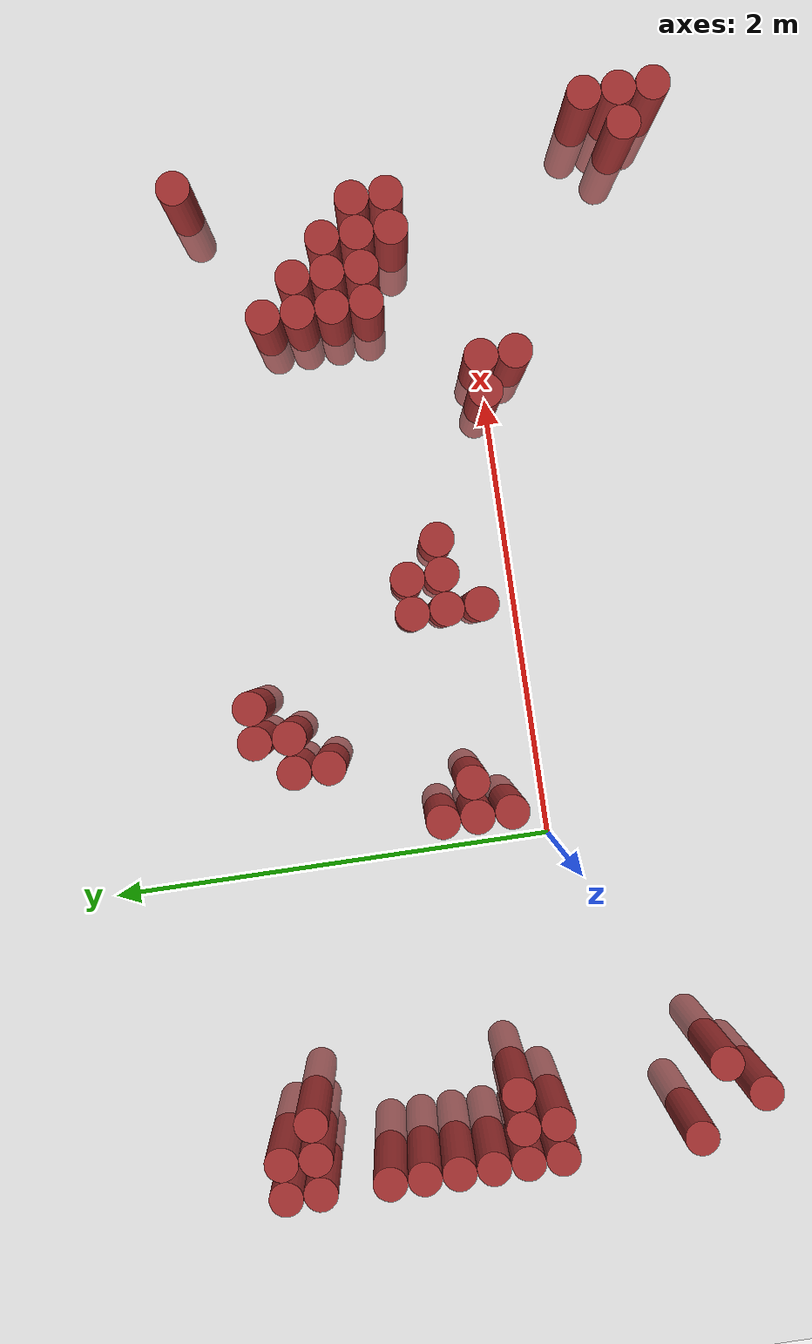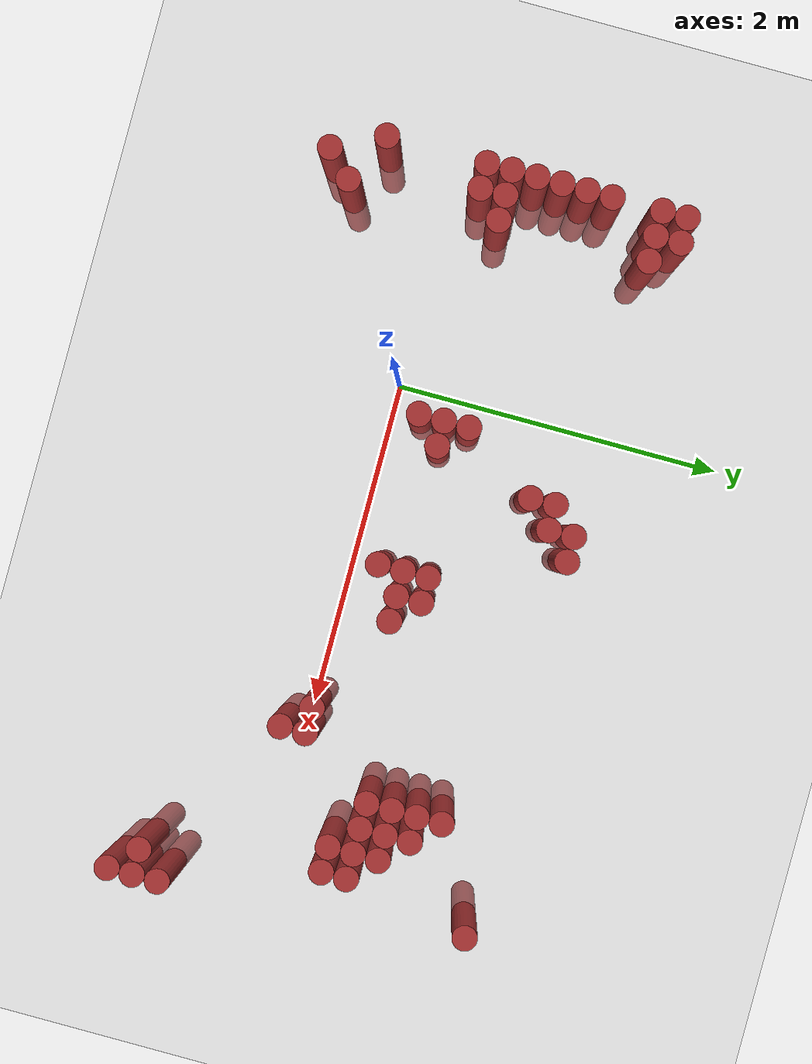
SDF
<sdf version="1.6">
 <world name="default">
  <model name="ground_plane">
   <static>1</static>
   <link name="link">
    <collision name="collision">
     <geometry><plane><normal>0 0 1</normal><size>100 100</size></plane></geometry>
     <surface><friction><ode><mu>100</mu><mu2>50</mu2></ode></friction></surface>
    </collision>
    <visual name="visual">
     <cast_shadows>0</cast_shadows>
     <geometry><plane><normal>0 0 1</normal><size>100 100</size></plane></geometry>
     <material>
      <script><uri>file://media/materials/scripts/gazebo.material</uri><name>Gazebo/Grey</name></script>
     </material>
    </visual>
   </link>
  </model>
  <model name="unit_cylinder_414">
   <static>1</static>
   <pose>-1.325000 -0.425000 0.000000 0.000000 0.000000 0.000000</pose>
   <link name="link">
    <inertial>
     <mass>1</mass>
     <inertia><ixx>0.145833</ixx><ixy>0</ixy><ixz>0</ixz><iyy>0.145833</iyy><iyz>0</iyz><izz>0.125</izz></inertia>
    </inertial>
    <collision name="collision">
     <geometry><cylinder><radius>0.075000</radius><length>1.5</length></cylinder></geometry>
    </collision>
    <visual name="visual">
     <geometry><cylinder><radius>0.075000</radius><length>1.5</length></cylinder></geometry>
     <material>
      <ambient>0.648000 0.192000 0.192000 1</ambient>
      <diffuse>0.648000 0.192000 0.192000 1</diffuse>
     </material>
     <material>
      <script><name>Gazebo/Grey</name><uri>file://media/materials/scripts/gazebo.material</uri></script>
     </material>
    </visual>
   </link>
  </model>
  <model name="unit_cylinder_415">
   <static>1</static>
   <pose>-1.325000 0.175000 0.000000 0.000000 0.000000 0.000000</pose>
   <link name="link">
    <inertial>
     <mass>1</mass>
     <inertia><ixx>0.145833</ixx><ixy>0</ixy><ixz>0</ixz><iyy>0.145833</iyy><iyz>0</iyz><izz>0.125</izz></inertia>
    </inertial>
    <collision name="collision">
     <geometry><cylinder><radius>0.075000</radius><length>1.5</length></cylinder></geometry>
    </collision>
    <visual name="visual">
     <geometry><cylinder><radius>0.075000</radius><length>1.5</length></cylinder></geometry>
     <material>
      <ambient>0.648000 0.192000 0.192000 1</ambient>
      <diffuse>0.648000 0.192000 0.192000 1</diffuse>
     </material>
     <material>
      <script><name>Gazebo/Grey</name><uri>file://media/materials/scripts/gazebo.material</uri></script>
     </material>
    </visual>
   </link>
  </model>
  <model name="unit_cylinder_416">
   <static>1</static>
   <pose>-1.325000 0.325000 0.000000 0.000000 0.000000 0.000000</pose>
   <link name="link">
    <inertial>
     <mass>1</mass>
     <inertia><ixx>0.145833</ixx><ixy>0</ixy><ixz>0</ixz><iyy>0.145833</iyy><iyz>0</iyz><izz>0.125</izz></inertia>
    </inertial>
    <collision name="collision">
     <geometry><cylinder><radius>0.075000</radius><length>1.5</length></cylinder></geometry>
    </collision>
    <visual name="visual">
     <geometry><cylinder><radius>0.075000</radius><length>1.5</length></cylinder></geometry>
     <material>
      <ambient>0.648000 0.192000 0.192000 1</ambient>
      <diffuse>0.648000 0.192000 0.192000 1</diffuse>
     </material>
     <material>
      <script><name>Gazebo/Grey</name><uri>file://media/materials/scripts/gazebo.material</uri></script>
     </material>
    </visual>
   </link>
  </model>
  <model name="unit_cylinder_417">
   <static>1</static>
   <pose>-1.325000 0.475000 0.000000 0.000000 0.000000 0.000000</pose>
   <link name="link">
    <inertial>
     <mass>1</mass>
     <inertia><ixx>0.145833</ixx><ixy>0</ixy><ixz>0</ixz><iyy>0.145833</iyy><iyz>0</iyz><izz>0.125</izz></inertia>
    </inertial>
    <collision name="collision">
     <geometry><cylinder><radius>0.075000</radius><length>1.5</length></cylinder></geometry>
    </collision>
    <visual name="visual">
     <geometry><cylinder><radius>0.075000</radius><length>1.5</length></cylinder></geometry>
     <material>
      <ambient>0.648000 0.192000 0.192000 1</ambient>
      <diffuse>0.648000 0.192000 0.192000 1</diffuse>
     </material>
     <material>
      <script><name>Gazebo/Grey</name><uri>file://media/materials/scripts/gazebo.material</uri></script>
     </material>
    </visual>
   </link>
  </model>
  <model name="unit_cylinder_418">
   <static>1</static>
   <pose>-1.325000 0.625000 0.000000 0.000000 0.000000 0.000000</pose>
   <link name="link">
    <inertial>
     <mass>1</mass>
     <inertia><ixx>0.145833</ixx><ixy>0</ixy><ixz>0</ixz><iyy>0.145833</iyy><iyz>0</iyz><izz>0.125</izz></inertia>
    </inertial>
    <collision name="collision">
     <geometry><cylinder><radius>0.075000</radius><length>1.5</length></cylinder></geometry>
    </collision>
    <visual name="visual">
     <geometry><cylinder><radius>0.075000</radius><length>1.5</length></cylinder></geometry>
     <material>
      <ambient>0.648000 0.192000 0.192000 1</ambient>
      <diffuse>0.648000 0.192000 0.192000 1</diffuse>
     </material>
     <material>
      <script><name>Gazebo/Grey</name><uri>file://media/materials/scripts/gazebo.material</uri></script>
     </material>
    </visual>
   </link>
  </model>
  <model name="unit_cylinder_419">
   <static>1</static>
   <pose>-1.325000 0.775000 0.000000 0.000000 0.000000 0.000000</pose>
   <link name="link">
    <inertial>
     <mass>1</mass>
     <inertia><ixx>0.145833</ixx><ixy>0</ixy><ixz>0</ixz><iyy>0.145833</iyy><iyz>0</iyz><izz>0.125</izz></inertia>
    </inertial>
    <collision name="collision">
     <geometry><cylinder><radius>0.075000</radius><length>1.5</length></cylinder></geometry>
    </collision>
    <visual name="visual">
     <geometry><cylinder><radius>0.075000</radius><length>1.5</length></cylinder></geometry>
     <material>
      <ambient>0.648000 0.192000 0.192000 1</ambient>
      <diffuse>0.648000 0.192000 0.192000 1</diffuse>
     </material>
     <material>
      <script><name>Gazebo/Grey</name><uri>file://media/materials/scripts/gazebo.material</uri></script>
     </material>
    </visual>
   </link>
  </model>
  <model name="unit_cylinder_420">
   <static>1</static>
   <pose>-1.325000 0.925000 0.000000 0.000000 0.000000 0.000000</pose>
   <link name="link">
    <inertial>
     <mass>1</mass>
     <inertia><ixx>0.145833</ixx><ixy>0</ixy><ixz>0</ixz><iyy>0.145833</iyy><iyz>0</iyz><izz>0.125</izz></inertia>
    </inertial>
    <collision name="collision">
     <geometry><cylinder><radius>0.075000</radius><length>1.5</length></cylinder></geometry>
    </collision>
    <visual name="visual">
     <geometry><cylinder><radius>0.075000</radius><length>1.5</length></cylinder></geometry>
     <material>
      <ambient>0.648000 0.192000 0.192000 1</ambient>
      <diffuse>0.648000 0.192000 0.192000 1</diffuse>
     </material>
     <material>
      <script><name>Gazebo/Grey</name><uri>file://media/materials/scripts/gazebo.material</uri></script>
     </material>
    </visual>
   </link>
  </model>
  <model name="unit_cylinder_421">
   <static>1</static>
   <pose>-1.325000 1.225000 0.000000 0.000000 0.000000 0.000000</pose>
   <link name="link">
    <inertial>
     <mass>1</mass>
     <inertia><ixx>0.145833</ixx><ixy>0</ixy><ixz>0</ixz><iyy>0.145833</iyy><iyz>0</iyz><izz>0.125</izz></inertia>
    </inertial>
    <collision name="collision">
     <geometry><cylinder><radius>0.075000</radius><length>1.5</length></cylinder></geometry>
    </collision>
    <visual name="visual">
     <geometry><cylinder><radius>0.075000</radius><length>1.5</length></cylinder></geometry>
     <material>
      <ambient>0.648000 0.192000 0.192000 1</ambient>
      <diffuse>0.648000 0.192000 0.192000 1</diffuse>
     </material>
     <material>
      <script><name>Gazebo/Grey</name><uri>file://media/materials/scripts/gazebo.material</uri></script>
     </material>
    </visual>
   </link>
  </model>
  <model name="unit_cylinder_422">
   <static>1</static>
   <pose>-1.325000 1.375000 0.000000 0.000000 0.000000 0.000000</pose>
   <link name="link">
    <inertial>
     <mass>1</mass>
     <inertia><ixx>0.145833</ixx><ixy>0</ixy><ixz>0</ixz><iyy>0.145833</iyy><iyz>0</iyz><izz>0.125</izz></inertia>
    </inertial>
    <collision name="collision">
     <geometry><cylinder><radius>0.075000</radius><length>1.5</length></cylinder></geometry>
    </collision>
    <visual name="visual">
     <geometry><cylinder><radius>0.075000</radius><length>1.5</length></cylinder></geometry>
     <material>
      <ambient>0.648000 0.192000 0.192000 1</ambient>
      <diffuse>0.648000 0.192000 0.192000 1</diffuse>
     </material>
     <material>
      <script><name>Gazebo/Grey</name><uri>file://media/materials/scripts/gazebo.material</uri></script>
     </material>
    </visual>
   </link>
  </model>
  <model name="unit_cylinder_429">
   <static>1</static>
   <pose>-1.175000 -0.725000 0.000000 0.000000 0.000000 0.000000</pose>
   <link name="link">
    <inertial>
     <mass>1</mass>
     <inertia><ixx>0.145833</ixx><ixy>0</ixy><ixz>0</ixz><iyy>0.145833</iyy><iyz>0</iyz><izz>0.125</izz></inertia>
    </inertial>
    <collision name="collision">
     <geometry><cylinder><radius>0.075000</radius><length>1.5</length></cylinder></geometry>
    </collision>
    <visual name="visual">
     <geometry><cylinder><radius>0.075000</radius><length>1.5</length></cylinder></geometry>
     <material>
      <ambient>0.648000 0.192000 0.192000 1</ambient>
      <diffuse>0.648000 0.192000 0.192000 1</diffuse>
     </material>
     <material>
      <script><name>Gazebo/Grey</name><uri>file://media/materials/scripts/gazebo.material</uri></script>
     </material>
    </visual>
   </link>
  </model>
  <model name="unit_cylinder_430">
   <static>1</static>
   <pose>-1.175000 0.175000 0.000000 0.000000 0.000000 0.000000</pose>
   <link name="link">
    <inertial>
     <mass>1</mass>
     <inertia><ixx>0.145833</ixx><ixy>0</ixy><ixz>0</ixz><iyy>0.145833</iyy><iyz>0</iyz><izz>0.125</izz></inertia>
    </inertial>
    <collision name="collision">
     <geometry><cylinder><radius>0.075000</radius><length>1.5</length></cylinder></geometry>
    </collision>
    <visual name="visual">
     <geometry><cylinder><radius>0.075000</radius><length>1.5</length></cylinder></geometry>
     <material>
      <ambient>0.648000 0.192000 0.192000 1</ambient>
      <diffuse>0.648000 0.192000 0.192000 1</diffuse>
     </material>
     <material>
      <script><name>Gazebo/Grey</name><uri>file://media/materials/scripts/gazebo.material</uri></script>
     </material>
    </visual>
   </link>
  </model>
  <model name="unit_cylinder_431">
   <static>1</static>
   <pose>-1.175000 0.325000 0.000000 0.000000 0.000000 0.000000</pose>
   <link name="link">
    <inertial>
     <mass>1</mass>
     <inertia><ixx>0.145833</ixx><ixy>0</ixy><ixz>0</ixz><iyy>0.145833</iyy><iyz>0</iyz><izz>0.125</izz></inertia>
    </inertial>
    <collision name="collision">
     <geometry><cylinder><radius>0.075000</radius><length>1.5</length></cylinder></geometry>
    </collision>
    <visual name="visual">
     <geometry><cylinder><radius>0.075000</radius><length>1.5</length></cylinder></geometry>
     <material>
      <ambient>0.648000 0.192000 0.192000 1</ambient>
      <diffuse>0.648000 0.192000 0.192000 1</diffuse>
     </material>
     <material>
      <script><name>Gazebo/Grey</name><uri>file://media/materials/scripts/gazebo.material</uri></script>
     </material>
    </visual>
   </link>
  </model>
  <model name="unit_cylinder_432">
   <static>1</static>
   <pose>-1.175000 1.225000 0.000000 0.000000 0.000000 0.000000</pose>
   <link name="link">
    <inertial>
     <mass>1</mass>
     <inertia><ixx>0.145833</ixx><ixy>0</ixy><ixz>0</ixz><iyy>0.145833</iyy><iyz>0</iyz><izz>0.125</izz></inertia>
    </inertial>
    <collision name="collision">
     <geometry><cylinder><radius>0.075000</radius><length>1.5</length></cylinder></geometry>
    </collision>
    <visual name="visual">
     <geometry><cylinder><radius>0.075000</radius><length>1.5</length></cylinder></geometry>
     <material>
      <ambient>0.648000 0.192000 0.192000 1</ambient>
      <diffuse>0.648000 0.192000 0.192000 1</diffuse>
     </material>
     <material>
      <script><name>Gazebo/Grey</name><uri>file://media/materials/scripts/gazebo.material</uri></script>
     </material>
    </visual>
   </link>
  </model>
  <model name="unit_cylinder_433">
   <static>1</static>
   <pose>-1.175000 1.375000 0.000000 0.000000 0.000000 0.000000</pose>
   <link name="link">
    <inertial>
     <mass>1</mass>
     <inertia><ixx>0.145833</ixx><ixy>0</ixy><ixz>0</ixz><iyy>0.145833</iyy><iyz>0</iyz><izz>0.125</izz></inertia>
    </inertial>
    <collision name="collision">
     <geometry><cylinder><radius>0.075000</radius><length>1.5</length></cylinder></geometry>
    </collision>
    <visual name="visual">
     <geometry><cylinder><radius>0.075000</radius><length>1.5</length></cylinder></geometry>
     <material>
      <ambient>0.648000 0.192000 0.192000 1</ambient>
      <diffuse>0.648000 0.192000 0.192000 1</diffuse>
     </material>
     <material>
      <script><name>Gazebo/Grey</name><uri>file://media/materials/scripts/gazebo.material</uri></script>
     </material>
    </visual>
   </link>
  </model>
  <model name="unit_cylinder_437">
   <static>1</static>
   <pose>-1.025000 -0.575000 0.000000 0.000000 0.000000 0.000000</pose>
   <link name="link">
    <inertial>
     <mass>1</mass>
     <inertia><ixx>0.145833</ixx><ixy>0</ixy><ixz>0</ixz><iyy>0.145833</iyy><iyz>0</iyz><izz>0.125</izz></inertia>
    </inertial>
    <collision name="collision">
     <geometry><cylinder><radius>0.075000</radius><length>1.5</length></cylinder></geometry>
    </collision>
    <visual name="visual">
     <geometry><cylinder><radius>0.075000</radius><length>1.5</length></cylinder></geometry>
     <material>
      <ambient>0.648000 0.192000 0.192000 1</ambient>
      <diffuse>0.648000 0.192000 0.192000 1</diffuse>
     </material>
     <material>
      <script><name>Gazebo/Grey</name><uri>file://media/materials/scripts/gazebo.material</uri></script>
     </material>
    </visual>
   </link>
  </model>
  <model name="unit_cylinder_438">
   <static>1</static>
   <pose>-1.025000 0.325000 0.000000 0.000000 0.000000 0.000000</pose>
   <link name="link">
    <inertial>
     <mass>1</mass>
     <inertia><ixx>0.145833</ixx><ixy>0</ixy><ixz>0</ixz><iyy>0.145833</iyy><iyz>0</iyz><izz>0.125</izz></inertia>
    </inertial>
    <collision name="collision">
     <geometry><cylinder><radius>0.075000</radius><length>1.5</length></cylinder></geometry>
    </collision>
    <visual name="visual">
     <geometry><cylinder><radius>0.075000</radius><length>1.5</length></cylinder></geometry>
     <material>
      <ambient>0.648000 0.192000 0.192000 1</ambient>
      <diffuse>0.648000 0.192000 0.192000 1</diffuse>
     </material>
     <material>
      <script><name>Gazebo/Grey</name><uri>file://media/materials/scripts/gazebo.material</uri></script>
     </material>
    </visual>
   </link>
  </model>
  <model name="unit_cylinder_439">
   <static>1</static>
   <pose>-1.025000 1.225000 0.000000 0.000000 0.000000 0.000000</pose>
   <link name="link">
    <inertial>
     <mass>1</mass>
     <inertia><ixx>0.145833</ixx><ixy>0</ixy><ixz>0</ixz><iyy>0.145833</iyy><iyz>0</iyz><izz>0.125</izz></inertia>
    </inertial>
    <collision name="collision">
     <geometry><cylinder><radius>0.075000</radius><length>1.5</length></cylinder></geometry>
    </collision>
    <visual name="visual">
     <geometry><cylinder><radius>0.075000</radius><length>1.5</length></cylinder></geometry>
     <material>
      <ambient>0.648000 0.192000 0.192000 1</ambient>
      <diffuse>0.648000 0.192000 0.192000 1</diffuse>
     </material>
     <material>
      <script><name>Gazebo/Grey</name><uri>file://media/materials/scripts/gazebo.material</uri></script>
     </material>
    </visual>
   </link>
  </model>
  <model name="unit_cylinder_462">
   <static>1</static>
   <pose>0.175000 0.175000 0.000000 0.000000 0.000000 0.000000</pose>
   <link name="link">
    <inertial>
     <mass>1</mass>
     <inertia><ixx>0.145833</ixx><ixy>0</ixy><ixz>0</ixz><iyy>0.145833</iyy><iyz>0</iyz><izz>0.125</izz></inertia>
    </inertial>
    <collision name="collision">
     <geometry><cylinder><radius>0.075000</radius><length>1.5</length></cylinder></geometry>
    </collision>
    <visual name="visual">
     <geometry><cylinder><radius>0.075000</radius><length>1.5</length></cylinder></geometry>
     <material>
      <ambient>0.648000 0.192000 0.192000 1</ambient>
      <diffuse>0.648000 0.192000 0.192000 1</diffuse>
     </material>
     <material>
      <script><name>Gazebo/Grey</name><uri>file://media/materials/scripts/gazebo.material</uri></script>
     </material>
    </visual>
   </link>
  </model>
  <model name="unit_cylinder_463">
   <static>1</static>
   <pose>0.175000 0.325000 0.000000 0.000000 0.000000 0.000000</pose>
   <link name="link">
    <inertial>
     <mass>1</mass>
     <inertia><ixx>0.145833</ixx><ixy>0</ixy><ixz>0</ixz><iyy>0.145833</iyy><iyz>0</iyz><izz>0.125</izz></inertia>
    </inertial>
    <collision name="collision">
     <geometry><cylinder><radius>0.075000</radius><length>1.5</length></cylinder></geometry>
    </collision>
    <visual name="visual">
     <geometry><cylinder><radius>0.075000</radius><length>1.5</length></cylinder></geometry>
     <material>
      <ambient>0.648000 0.192000 0.192000 1</ambient>
      <diffuse>0.648000 0.192000 0.192000 1</diffuse>
     </material>
     <material>
      <script><name>Gazebo/Grey</name><uri>file://media/materials/scripts/gazebo.material</uri></script>
     </material>
    </visual>
   </link>
  </model>
  <model name="unit_cylinder_464">
   <static>1</static>
   <pose>0.175000 0.475000 0.000000 0.000000 0.000000 0.000000</pose>
   <link name="link">
    <inertial>
     <mass>1</mass>
     <inertia><ixx>0.145833</ixx><ixy>0</ixy><ixz>0</ixz><iyy>0.145833</iyy><iyz>0</iyz><izz>0.125</izz></inertia>
    </inertial>
    <collision name="collision">
     <geometry><cylinder><radius>0.075000</radius><length>1.5</length></cylinder></geometry>
    </collision>
    <visual name="visual">
     <geometry><cylinder><radius>0.075000</radius><length>1.5</length></cylinder></geometry>
     <material>
      <ambient>0.648000 0.192000 0.192000 1</ambient>
      <diffuse>0.648000 0.192000 0.192000 1</diffuse>
     </material>
     <material>
      <script><name>Gazebo/Grey</name><uri>file://media/materials/scripts/gazebo.material</uri></script>
     </material>
    </visual>
   </link>
  </model>
  <model name="unit_cylinder_465">
   <static>1</static>
   <pose>0.325000 0.325000 0.000000 0.000000 0.000000 0.000000</pose>
   <link name="link">
    <inertial>
     <mass>1</mass>
     <inertia><ixx>0.145833</ixx><ixy>0</ixy><ixz>0</ixz><iyy>0.145833</iyy><iyz>0</iyz><izz>0.125</izz></inertia>
    </inertial>
    <collision name="collision">
     <geometry><cylinder><radius>0.075000</radius><length>1.5</length></cylinder></geometry>
    </collision>
    <visual name="visual">
     <geometry><cylinder><radius>0.075000</radius><length>1.5</length></cylinder></geometry>
     <material>
      <ambient>0.648000 0.192000 0.192000 1</ambient>
      <diffuse>0.648000 0.192000 0.192000 1</diffuse>
     </material>
     <material>
      <script><name>Gazebo/Grey</name><uri>file://media/materials/scripts/gazebo.material</uri></script>
     </material>
    </visual>
   </link>
  </model>
  <model name="unit_cylinder_466">
   <static>1</static>
   <pose>0.475000 0.925000 0.000000 0.000000 0.000000 0.000000</pose>
   <link name="link">
    <inertial>
     <mass>1</mass>
     <inertia><ixx>0.145833</ixx><ixy>0</ixy><ixz>0</ixz><iyy>0.145833</iyy><iyz>0</iyz><izz>0.125</izz></inertia>
    </inertial>
    <collision name="collision">
     <geometry><cylinder><radius>0.075000</radius><length>1.5</length></cylinder></geometry>
    </collision>
    <visual name="visual">
     <geometry><cylinder><radius>0.075000</radius><length>1.5</length></cylinder></geometry>
     <material>
      <ambient>0.648000 0.192000 0.192000 1</ambient>
      <diffuse>0.648000 0.192000 0.192000 1</diffuse>
     </material>
     <material>
      <script><name>Gazebo/Grey</name><uri>file://media/materials/scripts/gazebo.material</uri></script>
     </material>
    </visual>
   </link>
  </model>
  <model name="unit_cylinder_467">
   <static>1</static>
   <pose>0.475000 1.075000 0.000000 0.000000 0.000000 0.000000</pose>
   <link name="link">
    <inertial>
     <mass>1</mass>
     <inertia><ixx>0.145833</ixx><ixy>0</ixy><ixz>0</ixz><iyy>0.145833</iyy><iyz>0</iyz><izz>0.125</izz></inertia>
    </inertial>
    <collision name="collision">
     <geometry><cylinder><radius>0.075000</radius><length>1.5</length></cylinder></geometry>
    </collision>
    <visual name="visual">
     <geometry><cylinder><radius>0.075000</radius><length>1.5</length></cylinder></geometry>
     <material>
      <ambient>0.648000 0.192000 0.192000 1</ambient>
      <diffuse>0.648000 0.192000 0.192000 1</diffuse>
     </material>
     <material>
      <script><name>Gazebo/Grey</name><uri>file://media/materials/scripts/gazebo.material</uri></script>
     </material>
    </visual>
   </link>
  </model>
  <model name="unit_cylinder_468">
   <static>1</static>
   <pose>0.625000 1.075000 0.000000 0.000000 0.000000 0.000000</pose>
   <link name="link">
    <inertial>
     <mass>1</mass>
     <inertia><ixx>0.145833</ixx><ixy>0</ixy><ixz>0</ixz><iyy>0.145833</iyy><iyz>0</iyz><izz>0.125</izz></inertia>
    </inertial>
    <collision name="collision">
     <geometry><cylinder><radius>0.075000</radius><length>1.5</length></cylinder></geometry>
    </collision>
    <visual name="visual">
     <geometry><cylinder><radius>0.075000</radius><length>1.5</length></cylinder></geometry>
     <material>
      <ambient>0.648000 0.192000 0.192000 1</ambient>
      <diffuse>0.648000 0.192000 0.192000 1</diffuse>
     </material>
     <material>
      <script><name>Gazebo/Grey</name><uri>file://media/materials/scripts/gazebo.material</uri></script>
     </material>
    </visual>
   </link>
  </model>
  <model name="unit_cylinder_469">
   <static>1</static>
   <pose>0.625000 1.225000 0.000000 0.000000 0.000000 0.000000</pose>
   <link name="link">
    <inertial>
     <mass>1</mass>
     <inertia><ixx>0.145833</ixx><ixy>0</ixy><ixz>0</ixz><iyy>0.145833</iyy><iyz>0</iyz><izz>0.125</izz></inertia>
    </inertial>
    <collision name="collision">
     <geometry><cylinder><radius>0.075000</radius><length>1.5</length></cylinder></geometry>
    </collision>
    <visual name="visual">
     <geometry><cylinder><radius>0.075000</radius><length>1.5</length></cylinder></geometry>
     <material>
      <ambient>0.648000 0.192000 0.192000 1</ambient>
      <diffuse>0.648000 0.192000 0.192000 1</diffuse>
     </material>
     <material>
      <script><name>Gazebo/Grey</name><uri>file://media/materials/scripts/gazebo.material</uri></script>
     </material>
    </visual>
   </link>
  </model>
  <model name="unit_cylinder_472">
   <static>1</static>
   <pose>0.775000 1.225000 0.000000 0.000000 0.000000 0.000000</pose>
   <link name="link">
    <inertial>
     <mass>1</mass>
     <inertia><ixx>0.145833</ixx><ixy>0</ixy><ixz>0</ixz><iyy>0.145833</iyy><iyz>0</iyz><izz>0.125</izz></inertia>
    </inertial>
    <collision name="collision">
     <geometry><cylinder><radius>0.075000</radius><length>1.5</length></cylinder></geometry>
    </collision>
    <visual name="visual">
     <geometry><cylinder><radius>0.075000</radius><length>1.5</length></cylinder></geometry>
     <material>
      <ambient>0.648000 0.192000 0.192000 1</ambient>
      <diffuse>0.648000 0.192000 0.192000 1</diffuse>
     </material>
     <material>
      <script><name>Gazebo/Grey</name><uri>file://media/materials/scripts/gazebo.material</uri></script>
     </material>
    </visual>
   </link>
  </model>
  <model name="unit_cylinder_478">
   <static>1</static>
   <pose>1.075000 0.175000 0.000000 0.000000 0.000000 0.000000</pose>
   <link name="link">
    <inertial>
     <mass>1</mass>
     <inertia><ixx>0.145833</ixx><ixy>0</ixy><ixz>0</ixz><iyy>0.145833</iyy><iyz>0</iyz><izz>0.125</izz></inertia>
    </inertial>
    <collision name="collision">
     <geometry><cylinder><radius>0.075000</radius><length>1.5</length></cylinder></geometry>
    </collision>
    <visual name="visual">
     <geometry><cylinder><radius>0.075000</radius><length>1.5</length></cylinder></geometry>
     <material>
      <ambient>0.648000 0.192000 0.192000 1</ambient>
      <diffuse>0.648000 0.192000 0.192000 1</diffuse>
     </material>
     <material>
      <script><name>Gazebo/Grey</name><uri>file://media/materials/scripts/gazebo.material</uri></script>
     </material>
    </visual>
   </link>
  </model>
  <model name="unit_cylinder_479">
   <static>1</static>
   <pose>1.075000 0.325000 0.000000 0.000000 0.000000 0.000000</pose>
   <link name="link">
    <inertial>
     <mass>1</mass>
     <inertia><ixx>0.145833</ixx><ixy>0</ixy><ixz>0</ixz><iyy>0.145833</iyy><iyz>0</iyz><izz>0.125</izz></inertia>
    </inertial>
    <collision name="collision">
     <geometry><cylinder><radius>0.075000</radius><length>1.5</length></cylinder></geometry>
    </collision>
    <visual name="visual">
     <geometry><cylinder><radius>0.075000</radius><length>1.5</length></cylinder></geometry>
     <material>
      <ambient>0.648000 0.192000 0.192000 1</ambient>
      <diffuse>0.648000 0.192000 0.192000 1</diffuse>
     </material>
     <material>
      <script><name>Gazebo/Grey</name><uri>file://media/materials/scripts/gazebo.material</uri></script>
     </material>
    </visual>
   </link>
  </model>
  <model name="unit_cylinder_480">
   <static>1</static>
   <pose>1.075000 0.475000 0.000000 0.000000 0.000000 0.000000</pose>
   <link name="link">
    <inertial>
     <mass>1</mass>
     <inertia><ixx>0.145833</ixx><ixy>0</ixy><ixz>0</ixz><iyy>0.145833</iyy><iyz>0</iyz><izz>0.125</izz></inertia>
    </inertial>
    <collision name="collision">
     <geometry><cylinder><radius>0.075000</radius><length>1.5</length></cylinder></geometry>
    </collision>
    <visual name="visual">
     <geometry><cylinder><radius>0.075000</radius><length>1.5</length></cylinder></geometry>
     <material>
      <ambient>0.648000 0.192000 0.192000 1</ambient>
      <diffuse>0.648000 0.192000 0.192000 1</diffuse>
     </material>
     <material>
      <script><name>Gazebo/Grey</name><uri>file://media/materials/scripts/gazebo.material</uri></script>
     </material>
    </visual>
   </link>
  </model>
  <model name="unit_cylinder_486">
   <static>1</static>
   <pose>1.225000 0.325000 0.000000 0.000000 0.000000 0.000000</pose>
   <link name="link">
    <inertial>
     <mass>1</mass>
     <inertia><ixx>0.145833</ixx><ixy>0</ixy><ixz>0</ixz><iyy>0.145833</iyy><iyz>0</iyz><izz>0.125</izz></inertia>
    </inertial>
    <collision name="collision">
     <geometry><cylinder><radius>0.075000</radius><length>1.5</length></cylinder></geometry>
    </collision>
    <visual name="visual">
     <geometry><cylinder><radius>0.075000</radius><length>1.5</length></cylinder></geometry>
     <material>
      <ambient>0.648000 0.192000 0.192000 1</ambient>
      <diffuse>0.648000 0.192000 0.192000 1</diffuse>
     </material>
     <material>
      <script><name>Gazebo/Grey</name><uri>file://media/materials/scripts/gazebo.material</uri></script>
     </material>
    </visual>
   </link>
  </model>
  <model name="unit_cylinder_487">
   <static>1</static>
   <pose>1.225000 0.475000 0.000000 0.000000 0.000000 0.000000</pose>
   <link name="link">
    <inertial>
     <mass>1</mass>
     <inertia><ixx>0.145833</ixx><ixy>0</ixy><ixz>0</ixz><iyy>0.145833</iyy><iyz>0</iyz><izz>0.125</izz></inertia>
    </inertial>
    <collision name="collision">
     <geometry><cylinder><radius>0.075000</radius><length>1.5</length></cylinder></geometry>
    </collision>
    <visual name="visual">
     <geometry><cylinder><radius>0.075000</radius><length>1.5</length></cylinder></geometry>
     <material>
      <ambient>0.648000 0.192000 0.192000 1</ambient>
      <diffuse>0.648000 0.192000 0.192000 1</diffuse>
     </material>
     <material>
      <script><name>Gazebo/Grey</name><uri>file://media/materials/scripts/gazebo.material</uri></script>
     </material>
    </visual>
   </link>
  </model>
  <model name="unit_cylinder_496">
   <static>1</static>
   <pose>1.375000 0.325000 0.000000 0.000000 0.000000 0.000000</pose>
   <link name="link">
    <inertial>
     <mass>1</mass>
     <inertia><ixx>0.145833</ixx><ixy>0</ixy><ixz>0</ixz><iyy>0.145833</iyy><iyz>0</iyz><izz>0.125</izz></inertia>
    </inertial>
    <collision name="collision">
     <geometry><cylinder><radius>0.075000</radius><length>1.5</length></cylinder></geometry>
    </collision>
    <visual name="visual">
     <geometry><cylinder><radius>0.075000</radius><length>1.5</length></cylinder></geometry>
     <material>
      <ambient>0.648000 0.192000 0.192000 1</ambient>
      <diffuse>0.648000 0.192000 0.192000 1</diffuse>
     </material>
     <material>
      <script><name>Gazebo/Grey</name><uri>file://media/materials/scripts/gazebo.material</uri></script>
     </material>
    </visual>
   </link>
  </model>
  <model name="unit_cylinder_530">
   <static>1</static>
   <pose>1.975000 0.025000 0.000000 0.000000 0.000000 0.000000</pose>
   <link name="link">
    <inertial>
     <mass>1</mass>
     <inertia><ixx>0.145833</ixx><ixy>0</ixy><ixz>0</ixz><iyy>0.145833</iyy><iyz>0</iyz><izz>0.125</izz></inertia>
    </inertial>
    <collision name="collision">
     <geometry><cylinder><radius>0.075000</radius><length>1.5</length></cylinder></geometry>
    </collision>
    <visual name="visual">
     <geometry><cylinder><radius>0.075000</radius><length>1.5</length></cylinder></geometry>
     <material>
      <ambient>0.648000 0.192000 0.192000 1</ambient>
      <diffuse>0.648000 0.192000 0.192000 1</diffuse>
     </material>
     <material>
      <script><name>Gazebo/Grey</name><uri>file://media/materials/scripts/gazebo.material</uri></script>
     </material>
    </visual>
   </link>
  </model>
  <model name="unit_cylinder_539">
   <static>1</static>
   <pose>2.125000 -0.125000 0.000000 0.000000 0.000000 0.000000</pose>
   <link name="link">
    <inertial>
     <mass>1</mass>
     <inertia><ixx>0.145833</ixx><ixy>0</ixy><ixz>0</ixz><iyy>0.145833</iyy><iyz>0</iyz><izz>0.125</izz></inertia>
    </inertial>
    <collision name="collision">
     <geometry><cylinder><radius>0.075000</radius><length>1.5</length></cylinder></geometry>
    </collision>
    <visual name="visual">
     <geometry><cylinder><radius>0.075000</radius><length>1.5</length></cylinder></geometry>
     <material>
      <ambient>0.648000 0.192000 0.192000 1</ambient>
      <diffuse>0.648000 0.192000 0.192000 1</diffuse>
     </material>
     <material>
      <script><name>Gazebo/Grey</name><uri>file://media/materials/scripts/gazebo.material</uri></script>
     </material>
    </visual>
   </link>
  </model>
  <model name="unit_cylinder_540">
   <static>1</static>
   <pose>2.125000 0.025000 0.000000 0.000000 0.000000 0.000000</pose>
   <link name="link">
    <inertial>
     <mass>1</mass>
     <inertia><ixx>0.145833</ixx><ixy>0</ixy><ixz>0</ixz><iyy>0.145833</iyy><iyz>0</iyz><izz>0.125</izz></inertia>
    </inertial>
    <collision name="collision">
     <geometry><cylinder><radius>0.075000</radius><length>1.5</length></cylinder></geometry>
    </collision>
    <visual name="visual">
     <geometry><cylinder><radius>0.075000</radius><length>1.5</length></cylinder></geometry>
     <material>
      <ambient>0.648000 0.192000 0.192000 1</ambient>
      <diffuse>0.648000 0.192000 0.192000 1</diffuse>
     </material>
     <material>
      <script><name>Gazebo/Grey</name><uri>file://media/materials/scripts/gazebo.material</uri></script>
     </material>
    </visual>
   </link>
  </model>
  <model name="unit_cylinder_554">
   <static>1</static>
   <pose>2.425000 0.475000 0.000000 0.000000 0.000000 0.000000</pose>
   <link name="link">
    <inertial>
     <mass>1</mass>
     <inertia><ixx>0.145833</ixx><ixy>0</ixy><ixz>0</ixz><iyy>0.145833</iyy><iyz>0</iyz><izz>0.125</izz></inertia>
    </inertial>
    <collision name="collision">
     <geometry><cylinder><radius>0.075000</radius><length>1.5</length></cylinder></geometry>
    </collision>
    <visual name="visual">
     <geometry><cylinder><radius>0.075000</radius><length>1.5</length></cylinder></geometry>
     <material>
      <ambient>0.648000 0.192000 0.192000 1</ambient>
      <diffuse>0.648000 0.192000 0.192000 1</diffuse>
     </material>
     <material>
      <script><name>Gazebo/Grey</name><uri>file://media/materials/scripts/gazebo.material</uri></script>
     </material>
    </visual>
   </link>
  </model>
  <model name="unit_cylinder_555">
   <static>1</static>
   <pose>2.425000 0.625000 0.000000 0.000000 0.000000 0.000000</pose>
   <link name="link">
    <inertial>
     <mass>1</mass>
     <inertia><ixx>0.145833</ixx><ixy>0</ixy><ixz>0</ixz><iyy>0.145833</iyy><iyz>0</iyz><izz>0.125</izz></inertia>
    </inertial>
    <collision name="collision">
     <geometry><cylinder><radius>0.075000</radius><length>1.5</length></cylinder></geometry>
    </collision>
    <visual name="visual">
     <geometry><cylinder><radius>0.075000</radius><length>1.5</length></cylinder></geometry>
     <material>
      <ambient>0.648000 0.192000 0.192000 1</ambient>
      <diffuse>0.648000 0.192000 0.192000 1</diffuse>
     </material>
     <material>
      <script><name>Gazebo/Grey</name><uri>file://media/materials/scripts/gazebo.material</uri></script>
     </material>
    </visual>
   </link>
  </model>
  <model name="unit_cylinder_556">
   <static>1</static>
   <pose>2.425000 0.775000 0.000000 0.000000 0.000000 0.000000</pose>
   <link name="link">
    <inertial>
     <mass>1</mass>
     <inertia><ixx>0.145833</ixx><ixy>0</ixy><ixz>0</ixz><iyy>0.145833</iyy><iyz>0</iyz><izz>0.125</izz></inertia>
    </inertial>
    <collision name="collision">
     <geometry><cylinder><radius>0.075000</radius><length>1.5</length></cylinder></geometry>
    </collision>
    <visual name="visual">
     <geometry><cylinder><radius>0.075000</radius><length>1.5</length></cylinder></geometry>
     <material>
      <ambient>0.648000 0.192000 0.192000 1</ambient>
      <diffuse>0.648000 0.192000 0.192000 1</diffuse>
     </material>
     <material>
      <script><name>Gazebo/Grey</name><uri>file://media/materials/scripts/gazebo.material</uri></script>
     </material>
    </visual>
   </link>
  </model>
  <model name="unit_cylinder_557">
   <static>1</static>
   <pose>2.425000 0.925000 0.000000 0.000000 0.000000 0.000000</pose>
   <link name="link">
    <inertial>
     <mass>1</mass>
     <inertia><ixx>0.145833</ixx><ixy>0</ixy><ixz>0</ixz><iyy>0.145833</iyy><iyz>0</iyz><izz>0.125</izz></inertia>
    </inertial>
    <collision name="collision">
     <geometry><cylinder><radius>0.075000</radius><length>1.5</length></cylinder></geometry>
    </collision>
    <visual name="visual">
     <geometry><cylinder><radius>0.075000</radius><length>1.5</length></cylinder></geometry>
     <material>
      <ambient>0.648000 0.192000 0.192000 1</ambient>
      <diffuse>0.648000 0.192000 0.192000 1</diffuse>
     </material>
     <material>
      <script><name>Gazebo/Grey</name><uri>file://media/materials/scripts/gazebo.material</uri></script>
     </material>
    </visual>
   </link>
  </model>
  <model name="unit_cylinder_564">
   <static>1</static>
   <pose>2.575000 0.475000 0.000000 0.000000 0.000000 0.000000</pose>
   <link name="link">
    <inertial>
     <mass>1</mass>
     <inertia><ixx>0.145833</ixx><ixy>0</ixy><ixz>0</ixz><iyy>0.145833</iyy><iyz>0</iyz><izz>0.125</izz></inertia>
    </inertial>
    <collision name="collision">
     <geometry><cylinder><radius>0.075000</radius><length>1.5</length></cylinder></geometry>
    </collision>
    <visual name="visual">
     <geometry><cylinder><radius>0.075000</radius><length>1.5</length></cylinder></geometry>
     <material>
      <ambient>0.648000 0.192000 0.192000 1</ambient>
      <diffuse>0.648000 0.192000 0.192000 1</diffuse>
     </material>
     <material>
      <script><name>Gazebo/Grey</name><uri>file://media/materials/scripts/gazebo.material</uri></script>
     </material>
    </visual>
   </link>
  </model>
  <model name="unit_cylinder_565">
   <static>1</static>
   <pose>2.575000 0.625000 0.000000 0.000000 0.000000 0.000000</pose>
   <link name="link">
    <inertial>
     <mass>1</mass>
     <inertia><ixx>0.145833</ixx><ixy>0</ixy><ixz>0</ixz><iyy>0.145833</iyy><iyz>0</iyz><izz>0.125</izz></inertia>
    </inertial>
    <collision name="collision">
     <geometry><cylinder><radius>0.075000</radius><length>1.5</length></cylinder></geometry>
    </collision>
    <visual name="visual">
     <geometry><cylinder><radius>0.075000</radius><length>1.5</length></cylinder></geometry>
     <material>
      <ambient>0.648000 0.192000 0.192000 1</ambient>
      <diffuse>0.648000 0.192000 0.192000 1</diffuse>
     </material>
     <material>
      <script><name>Gazebo/Grey</name><uri>file://media/materials/scripts/gazebo.material</uri></script>
     </material>
    </visual>
   </link>
  </model>
  <model name="unit_cylinder_566">
   <static>1</static>
   <pose>2.575000 0.775000 0.000000 0.000000 0.000000 0.000000</pose>
   <link name="link">
    <inertial>
     <mass>1</mass>
     <inertia><ixx>0.145833</ixx><ixy>0</ixy><ixz>0</ixz><iyy>0.145833</iyy><iyz>0</iyz><izz>0.125</izz></inertia>
    </inertial>
    <collision name="collision">
     <geometry><cylinder><radius>0.075000</radius><length>1.5</length></cylinder></geometry>
    </collision>
    <visual name="visual">
     <geometry><cylinder><radius>0.075000</radius><length>1.5</length></cylinder></geometry>
     <material>
      <ambient>0.648000 0.192000 0.192000 1</ambient>
      <diffuse>0.648000 0.192000 0.192000 1</diffuse>
     </material>
     <material>
      <script><name>Gazebo/Grey</name><uri>file://media/materials/scripts/gazebo.material</uri></script>
     </material>
    </visual>
   </link>
  </model>
  <model name="unit_cylinder_568">
   <static>1</static>
   <pose>2.725000 0.325000 0.000000 0.000000 0.000000 0.000000</pose>
   <link name="link">
    <inertial>
     <mass>1</mass>
     <inertia><ixx>0.145833</ixx><ixy>0</ixy><ixz>0</ixz><iyy>0.145833</iyy><iyz>0</iyz><izz>0.125</izz></inertia>
    </inertial>
    <collision name="collision">
     <geometry><cylinder><radius>0.075000</radius><length>1.5</length></cylinder></geometry>
    </collision>
    <visual name="visual">
     <geometry><cylinder><radius>0.075000</radius><length>1.5</length></cylinder></geometry>
     <material>
      <ambient>0.648000 0.192000 0.192000 1</ambient>
      <diffuse>0.648000 0.192000 0.192000 1</diffuse>
     </material>
     <material>
      <script><name>Gazebo/Grey</name><uri>file://media/materials/scripts/gazebo.material</uri></script>
     </material>
    </visual>
   </link>
  </model>
  <model name="unit_cylinder_569">
   <static>1</static>
   <pose>2.725000 0.475000 0.000000 0.000000 0.000000 0.000000</pose>
   <link name="link">
    <inertial>
     <mass>1</mass>
     <inertia><ixx>0.145833</ixx><ixy>0</ixy><ixz>0</ixz><iyy>0.145833</iyy><iyz>0</iyz><izz>0.125</izz></inertia>
    </inertial>
    <collision name="collision">
     <geometry><cylinder><radius>0.075000</radius><length>1.5</length></cylinder></geometry>
    </collision>
    <visual name="visual">
     <geometry><cylinder><radius>0.075000</radius><length>1.5</length></cylinder></geometry>
     <material>
      <ambient>0.648000 0.192000 0.192000 1</ambient>
      <diffuse>0.648000 0.192000 0.192000 1</diffuse>
     </material>
     <material>
      <script><name>Gazebo/Grey</name><uri>file://media/materials/scripts/gazebo.material</uri></script>
     </material>
    </visual>
   </link>
  </model>
  <model name="unit_cylinder_570">
   <static>1</static>
   <pose>2.725000 0.625000 0.000000 0.000000 0.000000 0.000000</pose>
   <link name="link">
    <inertial>
     <mass>1</mass>
     <inertia><ixx>0.145833</ixx><ixy>0</ixy><ixz>0</ixz><iyy>0.145833</iyy><iyz>0</iyz><izz>0.125</izz></inertia>
    </inertial>
    <collision name="collision">
     <geometry><cylinder><radius>0.075000</radius><length>1.5</length></cylinder></geometry>
    </collision>
    <visual name="visual">
     <geometry><cylinder><radius>0.075000</radius><length>1.5</length></cylinder></geometry>
     <material>
      <ambient>0.648000 0.192000 0.192000 1</ambient>
      <diffuse>0.648000 0.192000 0.192000 1</diffuse>
     </material>
     <material>
      <script><name>Gazebo/Grey</name><uri>file://media/materials/scripts/gazebo.material</uri></script>
     </material>
    </visual>
   </link>
  </model>
  <model name="unit_cylinder_575">
   <static>1</static>
   <pose>2.875000 0.325000 0.000000 0.000000 0.000000 0.000000</pose>
   <link name="link">
    <inertial>
     <mass>1</mass>
     <inertia><ixx>0.145833</ixx><ixy>0</ixy><ixz>0</ixz><iyy>0.145833</iyy><iyz>0</iyz><izz>0.125</izz></inertia>
    </inertial>
    <collision name="collision">
     <geometry><cylinder><radius>0.075000</radius><length>1.5</length></cylinder></geometry>
    </collision>
    <visual name="visual">
     <geometry><cylinder><radius>0.075000</radius><length>1.5</length></cylinder></geometry>
     <material>
      <ambient>0.648000 0.192000 0.192000 1</ambient>
      <diffuse>0.648000 0.192000 0.192000 1</diffuse>
     </material>
     <material>
      <script><name>Gazebo/Grey</name><uri>file://media/materials/scripts/gazebo.material</uri></script>
     </material>
    </visual>
   </link>
  </model>
  <model name="unit_cylinder_576">
   <static>1</static>
   <pose>2.875000 0.475000 0.000000 0.000000 0.000000 0.000000</pose>
   <link name="link">
    <inertial>
     <mass>1</mass>
     <inertia><ixx>0.145833</ixx><ixy>0</ixy><ixz>0</ixz><iyy>0.145833</iyy><iyz>0</iyz><izz>0.125</izz></inertia>
    </inertial>
    <collision name="collision">
     <geometry><cylinder><radius>0.075000</radius><length>1.5</length></cylinder></geometry>
    </collision>
    <visual name="visual">
     <geometry><cylinder><radius>0.075000</radius><length>1.5</length></cylinder></geometry>
     <material>
      <ambient>0.648000 0.192000 0.192000 1</ambient>
      <diffuse>0.648000 0.192000 0.192000 1</diffuse>
     </material>
     <material>
      <script><name>Gazebo/Grey</name><uri>file://media/materials/scripts/gazebo.material</uri></script>
     </material>
    </visual>
   </link>
  </model>
  <model name="unit_cylinder_588">
   <static>1</static>
   <pose>3.025000 -0.725000 0.000000 0.000000 0.000000 0.000000</pose>
   <link name="link">
    <inertial>
     <mass>1</mass>
     <inertia><ixx>0.145833</ixx><ixy>0</ixy><ixz>0</ixz><iyy>0.145833</iyy><iyz>0</iyz><izz>0.125</izz></inertia>
    </inertial>
    <collision name="collision">
     <geometry><cylinder><radius>0.075000</radius><length>1.5</length></cylinder></geometry>
    </collision>
    <visual name="visual">
     <geometry><cylinder><radius>0.075000</radius><length>1.5</length></cylinder></geometry>
     <material>
      <ambient>0.648000 0.192000 0.192000 1</ambient>
      <diffuse>0.648000 0.192000 0.192000 1</diffuse>
     </material>
     <material>
      <script><name>Gazebo/Grey</name><uri>file://media/materials/scripts/gazebo.material</uri></script>
     </material>
    </visual>
   </link>
  </model>
  <model name="unit_cylinder_589">
   <static>1</static>
   <pose>3.025000 1.225000 0.000000 0.000000 0.000000 0.000000</pose>
   <link name="link">
    <inertial>
     <mass>1</mass>
     <inertia><ixx>0.145833</ixx><ixy>0</ixy><ixz>0</ixz><iyy>0.145833</iyy><iyz>0</iyz><izz>0.125</izz></inertia>
    </inertial>
    <collision name="collision">
     <geometry><cylinder><radius>0.075000</radius><length>1.5</length></cylinder></geometry>
    </collision>
    <visual name="visual">
     <geometry><cylinder><radius>0.075000</radius><length>1.5</length></cylinder></geometry>
     <material>
      <ambient>0.648000 0.192000 0.192000 1</ambient>
      <diffuse>0.648000 0.192000 0.192000 1</diffuse>
     </material>
     <material>
      <script><name>Gazebo/Grey</name><uri>file://media/materials/scripts/gazebo.material</uri></script>
     </material>
    </visual>
   </link>
  </model>
  <model name="unit_cylinder_602">
   <static>1</static>
   <pose>3.175000 -0.875000 0.000000 0.000000 0.000000 0.000000</pose>
   <link name="link">
    <inertial>
     <mass>1</mass>
     <inertia><ixx>0.145833</ixx><ixy>0</ixy><ixz>0</ixz><iyy>0.145833</iyy><iyz>0</iyz><izz>0.125</izz></inertia>
    </inertial>
    <collision name="collision">
     <geometry><cylinder><radius>0.075000</radius><length>1.5</length></cylinder></geometry>
    </collision>
    <visual name="visual">
     <geometry><cylinder><radius>0.075000</radius><length>1.5</length></cylinder></geometry>
     <material>
      <ambient>0.648000 0.192000 0.192000 1</ambient>
      <diffuse>0.648000 0.192000 0.192000 1</diffuse>
     </material>
     <material>
      <script><name>Gazebo/Grey</name><uri>file://media/materials/scripts/gazebo.material</uri></script>
     </material>
    </visual>
   </link>
  </model>
  <model name="unit_cylinder_603">
   <static>1</static>
   <pose>3.175000 -0.725000 0.000000 0.000000 0.000000 0.000000</pose>
   <link name="link">
    <inertial>
     <mass>1</mass>
     <inertia><ixx>0.145833</ixx><ixy>0</ixy><ixz>0</ixz><iyy>0.145833</iyy><iyz>0</iyz><izz>0.125</izz></inertia>
    </inertial>
    <collision name="collision">
     <geometry><cylinder><radius>0.075000</radius><length>1.5</length></cylinder></geometry>
    </collision>
    <visual name="visual">
     <geometry><cylinder><radius>0.075000</radius><length>1.5</length></cylinder></geometry>
     <material>
      <ambient>0.648000 0.192000 0.192000 1</ambient>
      <diffuse>0.648000 0.192000 0.192000 1</diffuse>
     </material>
     <material>
      <script><name>Gazebo/Grey</name><uri>file://media/materials/scripts/gazebo.material</uri></script>
     </material>
    </visual>
   </link>
  </model>
  <model name="unit_cylinder_604">
   <static>1</static>
   <pose>3.175000 -0.575000 0.000000 0.000000 0.000000 0.000000</pose>
   <link name="link">
    <inertial>
     <mass>1</mass>
     <inertia><ixx>0.145833</ixx><ixy>0</ixy><ixz>0</ixz><iyy>0.145833</iyy><iyz>0</iyz><izz>0.125</izz></inertia>
    </inertial>
    <collision name="collision">
     <geometry><cylinder><radius>0.075000</radius><length>1.5</length></cylinder></geometry>
    </collision>
    <visual name="visual">
     <geometry><cylinder><radius>0.075000</radius><length>1.5</length></cylinder></geometry>
     <material>
      <ambient>0.648000 0.192000 0.192000 1</ambient>
      <diffuse>0.648000 0.192000 0.192000 1</diffuse>
     </material>
     <material>
      <script><name>Gazebo/Grey</name><uri>file://media/materials/scripts/gazebo.material</uri></script>
     </material>
    </visual>
   </link>
  </model>
 </world>
</sdf>
